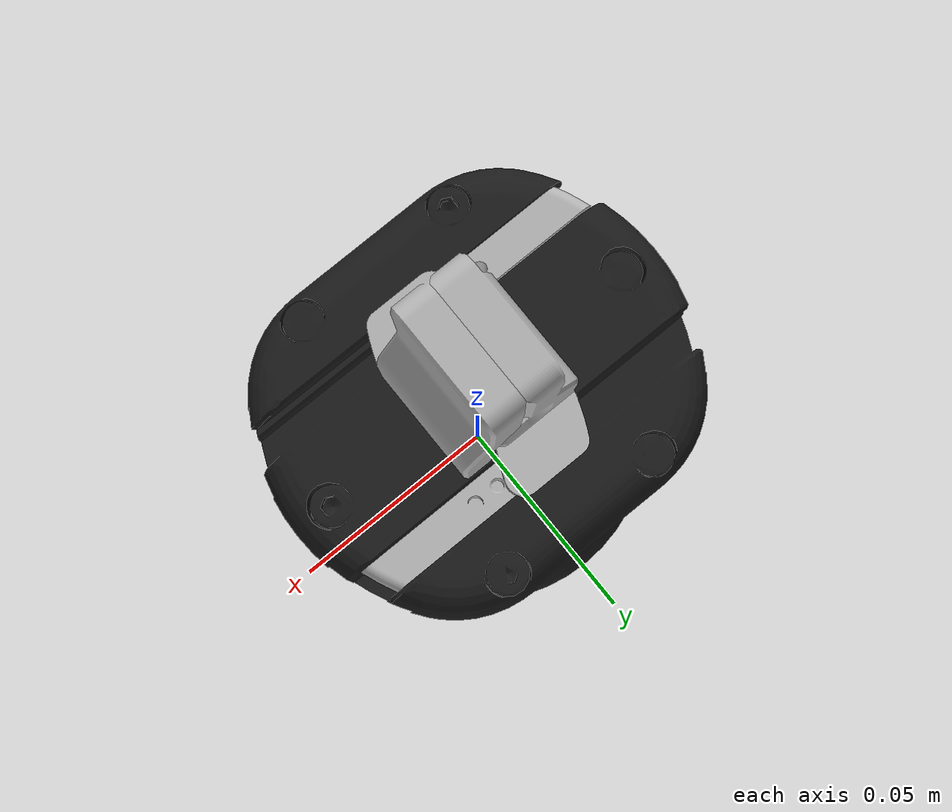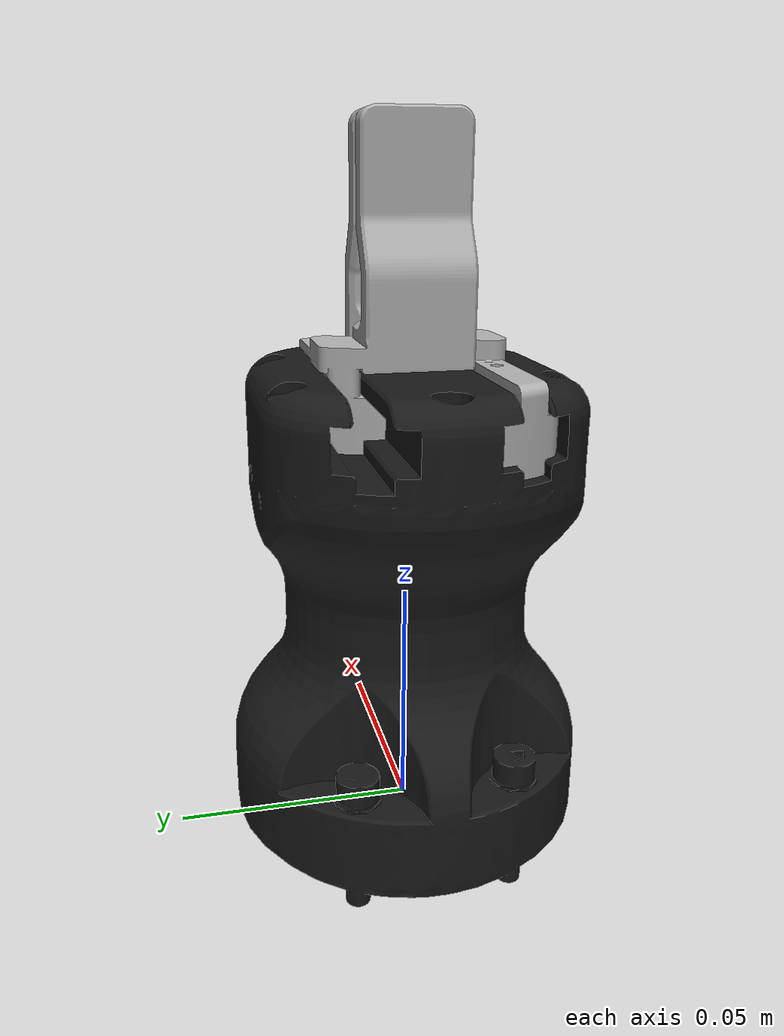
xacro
<?xml version="1.0" encoding="UTF-8"?>
<robot xmlns:xacro="http://wiki.ros.org/xacro" name="schunk_gripper">

  <!-- Use this if parameters are set from the launch file, otherwise delete -->
  <xacro:arg name="prefix" default="" />
  <xacro:arg name="use_mock_hardware" default="false" />
  <xacro:arg name="mock_sensor_commands" default="false" />

  <xacro:include filename="$(find robotiq_description)/urdf/robotiq_hand_e_macro.urdf.xacro"/>
  <xacro:include filename="$(find robotiq_description)/urdf/hand_e.ros2_control.xacro"/>

  <!-- create link fixed to the "world" -->
  <link name="base_link" />

  <!-- Load robot's macro with parameters -->
  <!-- set prefix if multiple robots are used -->
  <xacro:robotiq_hande prefix="$(arg prefix)" parent="base_link" >
    <origin xyz="0 0 0" rpy="0 0 0" />          <!-- position robot in the world -->
  </xacro:robotiq_hande>

  <xacro:robotiq_hande_ros2_control
    name="robotiq_hande"
    prefix="$(arg prefix)"
    use_mock_hardware="$(arg use_mock_hardware)" />

</robot>

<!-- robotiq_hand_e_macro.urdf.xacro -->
<robot xmlns:xacro="http://www.ros.org/wiki/xacro" name="gripper_finger">

    <!-- Colour definations-->
    <material name="gray">
      <color rgba="0.7 0.7 0.7 1.0"/>
    </material>
    <material name="dark">
      <color rgba=".1 0.1 0.1 1.0"/>
    </material>

    <!-- Gripper macro hand-e -->
    <xacro:macro name="robotiq_hande" params="
                 prefix parent *origin
                 left_finger_visual:=default left_finger_collision:=default
                 left_finger_scale:=default left_finger_collision_scale:=default
                 right_finger_visual:=default right_finger_collision:=default
                 right_finger_scale:=default right_finger_collision_scale:=default
                 tcp_z_offset:=0.1325
                 ">
      <xacro:property name="file_path" value="file://$(find robotiq_description)" />
      <xacro:property name="gripper_maximal_stroke" value="0.050" />

      <!-- resolve complex default values -->
      <xacro:if value="${left_finger_visual == 'default'}">
        <xacro:property name="left_finger_visual" value="${file_path}/meshes/visual/hande/left_finger.dae" />
      </xacro:if>
      <xacro:if value="${left_finger_collision == 'default'}">
        <xacro:property name="left_finger_collision" value="${file_path}/meshes/collision/hande/left_finger.stl" />
      </xacro:if>
      <xacro:if value="${left_finger_scale == 'default'}">
        <xacro:property name="left_finger_scale" value="1.0 1.0 1.0" />
      </xacro:if>
      <xacro:if value="${left_finger_collision_scale == 'default'}">
        <xacro:property name="left_finger_collision_scale" value="1.0 1.0 1.0" />
      </xacro:if>
      <xacro:if value="${right_finger_visual == 'default'}">
        <xacro:property name="right_finger_visual" value="${file_path}/meshes/visual/hande/right_finger.dae" />
      </xacro:if>
      <xacro:if value="${right_finger_collision == 'default'}">
        <xacro:property name="right_finger_collision" value="${file_path}/meshes/collision/hande/right_finger.stl" />
      </xacro:if>
      <xacro:if value="${right_finger_collision_scale == 'default'}">
        <xacro:property name="right_finger_scale" value="1.0 1.0 1.0" />
      </xacro:if>
      <xacro:if value="${right_finger_collision_scale == 'default'}">
        <xacro:property name="right_finger_collision_scale" value="1.0 1.0 1.0" />
      </xacro:if>

      <link name="${prefix}hand_e_base_link">
          <inertial>
            <origin rpy="0 0 0" xyz="0 0 0.04607"/>
            <mass value="0.86387"/>
            <inertia ixx="1017560E-9" ixy="0" ixz="2235E-9" iyy="1028041E-9" iyz="0" izz="489810E-9"/>
          </inertial>
          <visual>
              <origin rpy="0 0 0" xyz="0 0 0"/>
              <geometry>
                  <mesh filename="${file_path}/meshes/visual/hande/hand-e.dae" scale="1.0 1.0 1.0"/>
              </geometry>
              <material name="dark" />
          </visual>
          <collision>
              <origin rpy="0 0 0" xyz="0 0 0"/>
              <geometry>
                  <mesh filename="${file_path}/meshes/collision/hande/hand-e.stl" scale="1.0 1.0 1.0"/>
              </geometry>
          </collision>
      </link>
      <joint name="${prefix}robotiq_hande_base_joint" type="fixed">
          <parent link="${parent}"/>
          <child link="${prefix}hand_e_base_link"/>
          <xacro:insert_block name="origin"/>
      </joint>

      <!-- Fingers -->
      <link name="${prefix}hande_left_finger">
          <visual>
            <origin rpy="0 0 0" xyz="0 0 0"/>
            <geometry>
              <mesh filename="${left_finger_visual}" scale="${left_finger_scale}" />
            </geometry>
            <material name="gray">
              <color rgba="0.7 0.7 0.7 1.0"/>
            </material>
          </visual>
          <collision>
            <origin rpy="0 0 0" xyz="${-0.010} ${-0.075/2} ${0.028/2}"/>
            <geometry>
              <box size="${left_finger_collision_scale}" />
            </geometry>
          </collision>
        </link>
        <link name="${prefix}hande_right_finger">
          <visual>
            <origin rpy="0 0 0" xyz="0 0 0"/>
            <geometry>
              <mesh filename="${right_finger_visual}" scale="${right_finger_scale}" />
            </geometry>
            <material name="gray">
              <color rgba="0.7 0.7 0.7 1.0"/>
            </material>
          </visual>
          <collision>
            <origin rpy="0 0 0" xyz="${0.010} ${-0.075/2} ${0.028/2}"/>
            <geometry>
              <box size="${right_finger_collision_scale}" />
            </geometry>
          </collision>
      </link>
      <!-- virtual joint to model values coming from the gripper to the geometry - gripper uses
      distance between fingers as command and state values -->
      <link name="${prefix}hande_finger_distance_link" />
      <joint name="${prefix}hande_finger_distance" type="prismatic">
        <axis xyz="1 0 0"/>
        <parent link="${prefix}hand_e_base_link"/>
        <child link="${prefix}hande_finger_distance_link"/>
        <origin rpy="0 0 0" xyz="0 0 0.099"/>
        <axis xyz="1 0 0"/>
        <limit effort="180" lower="0.0" upper="${gripper_maximal_stroke}" velocity="0.15"/>
      </joint>
      <joint name="${prefix}hande_left_finger_joint" type="prismatic">
        <origin rpy="0 0 0" xyz="0 0 0.099"/>
        <parent link="${prefix}hand_e_base_link"/>
        <child link="${prefix}hande_left_finger"/>
        <axis xyz="-1 0 0"/>
        <limit effort="180" lower="0" upper="${gripper_maximal_stroke/2}" velocity="0.15"/>
        <mimic joint="${prefix}hande_finger_distance" multiplier="-0.5" offset="${gripper_maximal_stroke/2}"/>
      </joint>
      <joint name="${prefix}hande_right_finger_joint" type="prismatic">
        <origin rpy="0 0 0" xyz="0 0 0.099"/>
        <parent link="${prefix}hand_e_base_link"/>
        <child link="${prefix}hande_right_finger"/>
        <axis xyz="1 0 0"/>
        <limit effort="180" lower="0" upper="${gripper_maximal_stroke/2}" velocity="0.15"/>
        <mimic joint="${prefix}hande_finger_distance" multiplier="-0.5" offset="${gripper_maximal_stroke/2}"/>
      </joint>

      <link name="$(arg prefix)tcp_link"/>
      <joint name="$(arg prefix)tcp_link_joint" type="fixed">
        <origin xyz="0 0 ${tcp_z_offset}" rpy="0 0 ${-pi/2}"/>
        <parent link="$(arg prefix)hand_e_base_link"/>
        <child link="$(arg prefix)tcp_link"/>
      </joint>

    </xacro:macro>
</robot>
